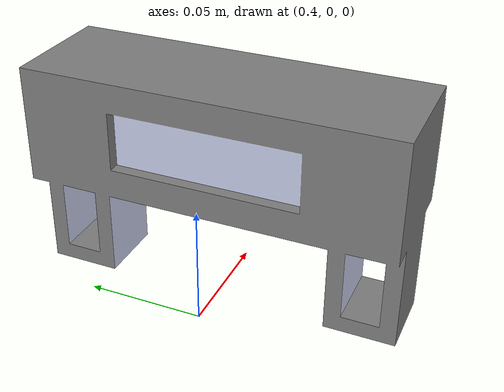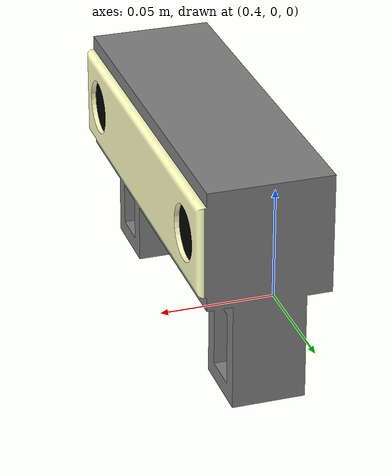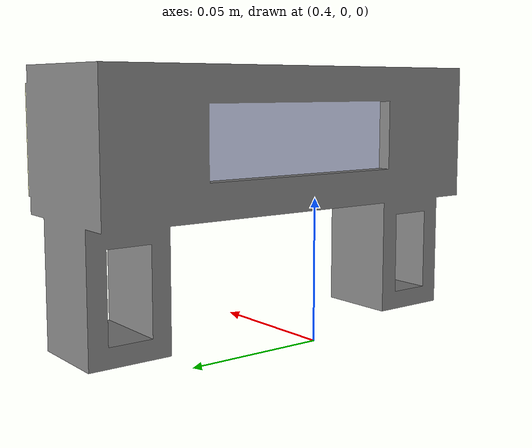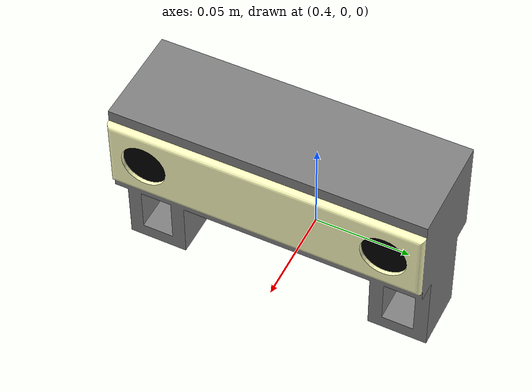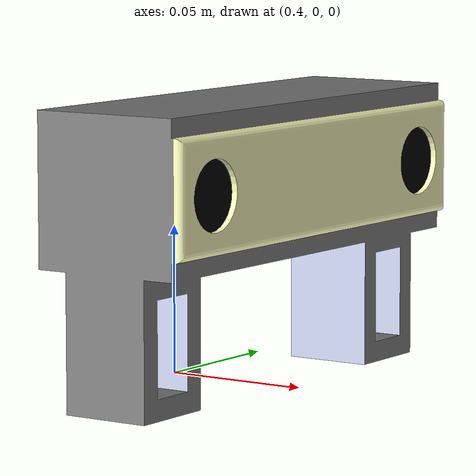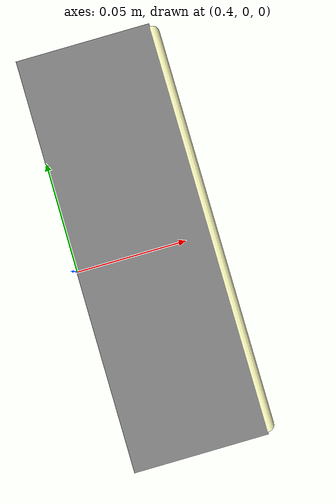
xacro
<?xml version="1.0"?>
<robot name="depth_camera" xmlns:xacro="http://www.ros.org/wiki/xacro">

<link name="camera_base_link"/>

<link name="camera_mesh">

  <inertial>
    <origin xyz="0 0 0" rpy="0 0 0"/>
    <mass value="${0.1}"/>
    <inertia ixx="${0.01}"  ixy="0"  ixz="0" iyy="${0.01}" iyz="0" izz="${0.01}" />
  </inertial>

  <visual>
   <geometry>
     <mesh filename="package://gpd_simulation/meshes/bb2_stereo_cam.dae"/>
   </geometry>
  </visual>

 <collision>
   <origin xyz="0 0 0.05" rpy="0 0 0"/>
   <geometry>
     <box size="${0.20} ${0.10} ${0.10}" />
   </geometry>
 </collision>

</link>

<joint name="base_to_mesh" type="fixed">
 <parent link="camera_base_link" />
 <child link="camera_mesh" />
 <origin xyz="0.43 0 0" rpy="0 0 1.5708" />
</joint>

<link name="camera_origin" />

<joint name="mesh_to_origin" type="fixed">
  <parent link="camera_mesh" />
  <child link="camera_origin" />
  <origin xyz="0.001 0 0.07" rpy="0 0 ${-1.5708}" />
</joint>

<link name="camera_optical_link" />

<joint name="origin_to_camera" type="fixed">
  <parent link="camera_origin" />
  <child link="camera_optical_link" />
  <origin xyz="0.01 0 0" rpy="${-1.5708} 0 ${-1.5708}" />
</joint>

</robot>
